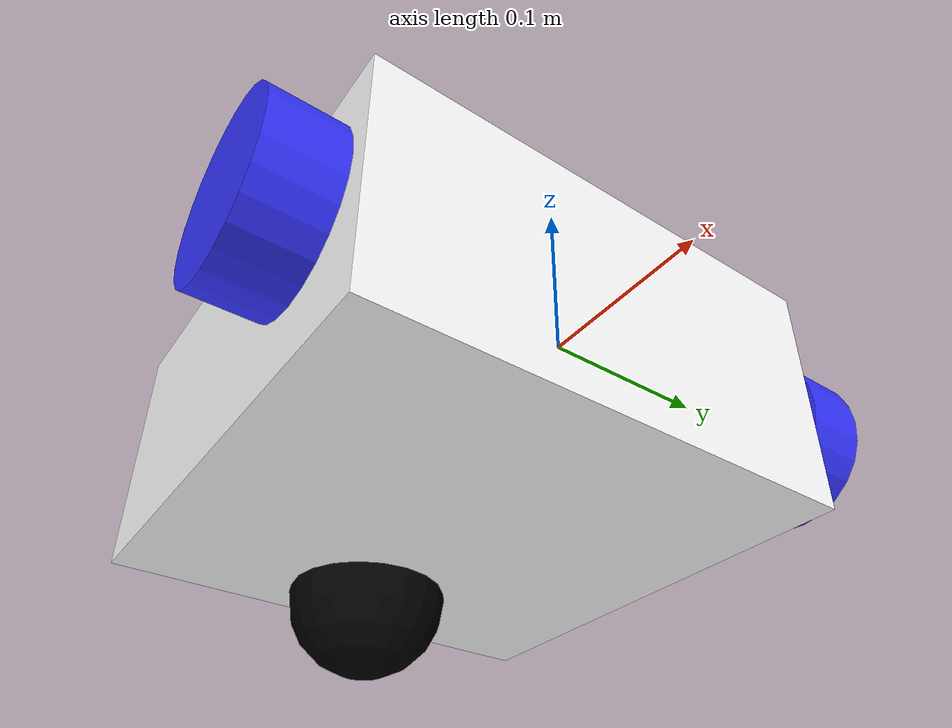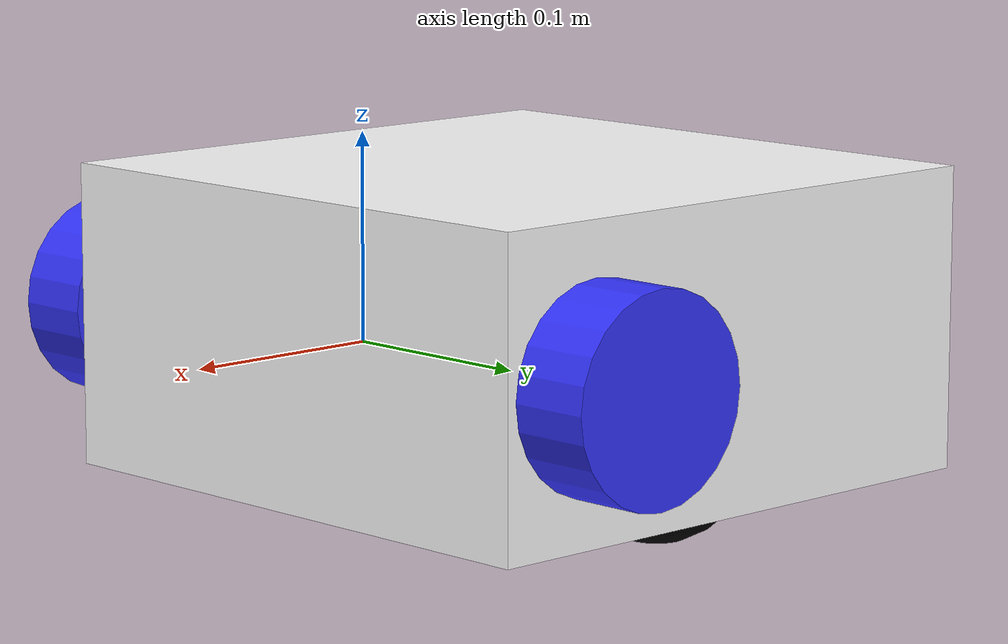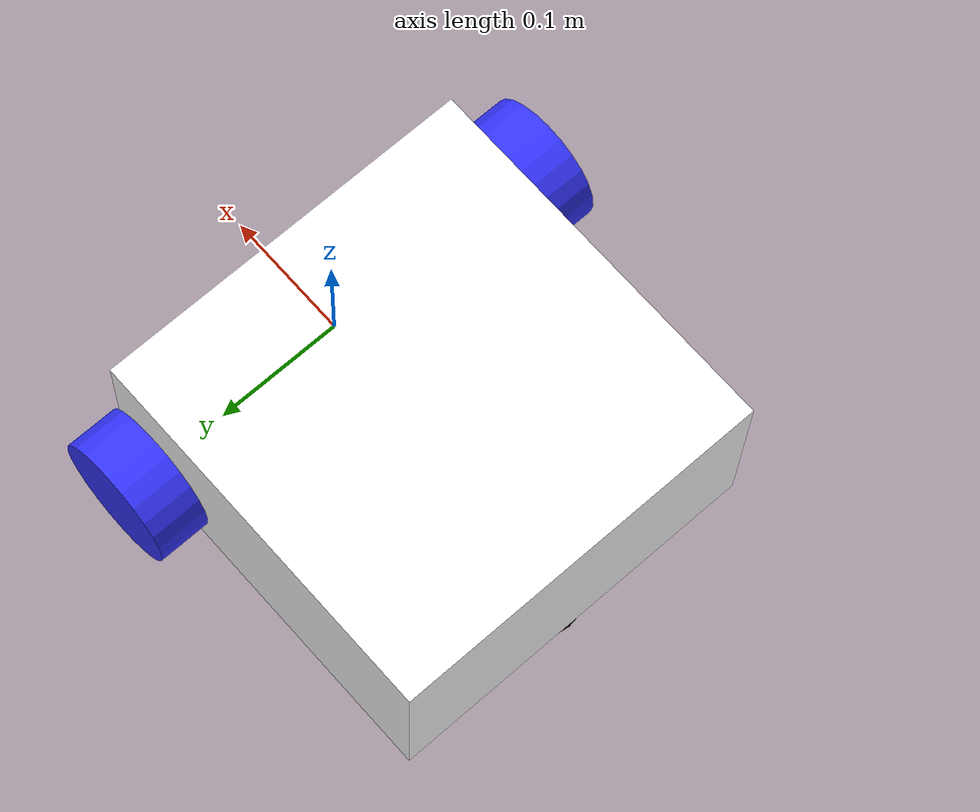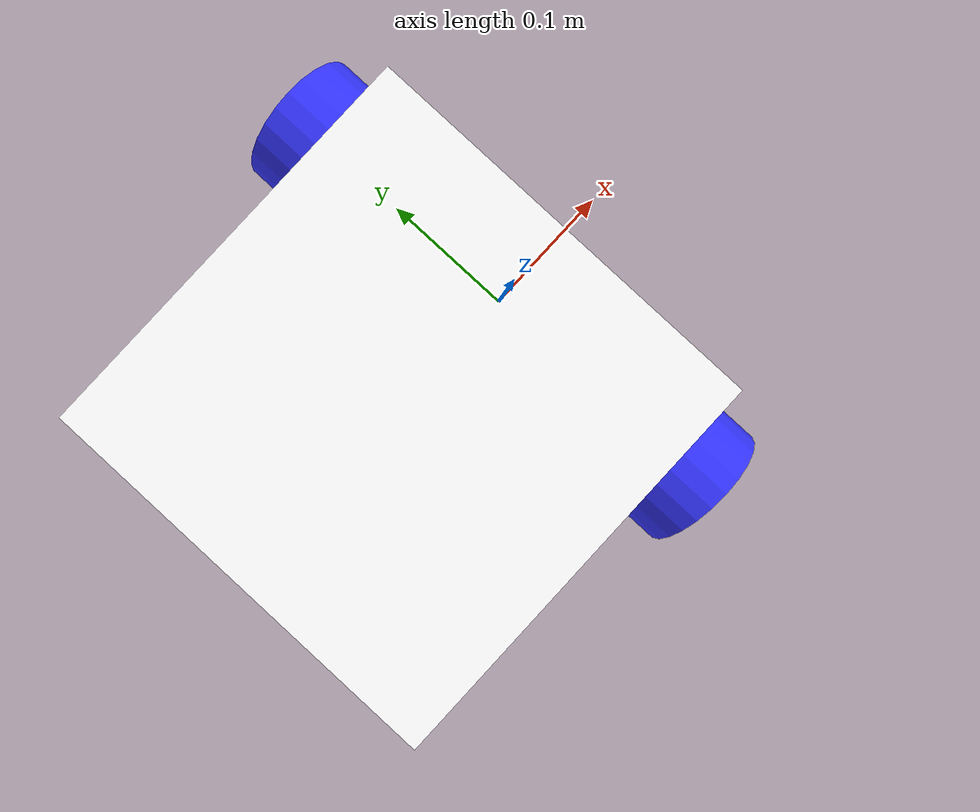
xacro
<?xml version="1.0"?>
<robot xmlns:xacro="http://www.ros.org/wiki/xacro">

    <xacro:include filename = "inertial_macros.xacro"/>

    <material name = "white">
        <color rgba = "1 1 1 1"/>
    </material>

    <material name = "orange">
        <color rgba = "1 0.3 0.1 1"/>
    </material>

    <material name = "blue">
    <color rgba = "0.2 0.2 1 1"/>
    </material>

    <material name = "black">
        <color rgba = "0 0 0 1"/>
    </material>

    <!-- BASE LINK -->
    <link name = "base_link">

    </link>

    <!-- CHASSIS LINK -->
    <joint name = "chassis_joint" type = "fixed">
        <parent link = "base_link"/>
        <child link = "chassis"/>
        <origin xyz = "-0.1 0 0"/>
    </joint>

    <link name = "chassis">
        <visual>
            <origin xyx = "0.15 0 0.075"/>
            <geometry>
                <box size = "0.3 0.3 0.15"/>
            </geometry>
            <material name = "white"/>
        </visual>
        <colision>
            <origin xyx = "0.15 0 0.075"/>
            <geometry>
                <box size = "0.3 0.3 0.15"/>
            </geometry>
        </colision>
        <xacro:inertial_box mass = "0.5" x = "0.3" y = "0.3" z = "0.15">
            <origin xyz = "0.15 0 0.075" rpy = "0 0 0"/>
        </xacro:inertial_box>
    </link>

    <!-- LEFT WHEEL LINK -->
    <joint name = "left_wheel_joint" type = "continuous">
        <parent link = "base_link"/>
        <child link = "left_wheel"/>
        <origin xyz = "0 0.175 0" rpy = "-${pi/2} 0 0"/>
        <axis xyz = "0 0 1"/>
    </joint>

    <link name = "left_wheel">
        <visual>
            <geometry>
                <cylinder radius = "0.05" length = "0.04"/>
            </geometry>
            <material name = "blue"/>
        </visual>
        <colision>
            <geometry>
                <cylinder radius = "0.05" length = "0.04"/>
            </geometry>
        </colision>
        <xacro:inertial_cylinder mass = "0.1" length = "0.04" radius = "0.05">
            <origin xyz = "0 0 0" rpy = "0 0 0"/>
        </xacro:inertial_cylinder>
    </link>

    <!--RIGHT WHEEL LINK -->
    <joint name = "right_wheel_joint" type = "continuous">
        <parent link = "base_link"/>
        <child link = "right_wheel"/>
        <origin xyz = "0 -0.175 0" rpy = "${pi/2} 0 0"/>
        <axis xyz = "0 0 -1"/>
    </joint>

    <link name = "right_wheel">
        <visual>
            <geometry>
                <cylinder radius = "0.05" length = "0.04"/>
            </geometry>
            <material name = "blue"/>
        </visual>
        <colision>
            <geometry>
                <cylinder radius = "0.05" length = "0.04"/>
            </geometry>
        </colision>
        <xacro:inertial_cylinder mass = "0.1" length = "0.04" radius = "0.05">
            <origin xyz = "0 0 0" rpy = "0 0 0"/>
        </xacro:inertial_cylinder>
    </link>

    <!-- CASTER WHEEL LINK -->
    <joint name = "caster_wheel" type = "fixed">
        <parent link = "chassis"/>
        <child link = "caster_wheel"/>
        <origin xyz = "-0.1 0 -0.08"/>
    </joint>

    <link name = "caster_wheel">
        <visual>
            <geometry>
                <sphere radius = "0.05"/>
            </geometry>
            <material name = "black"/>
        </visual>
        <colision>
            <geometry>
                <sphere radius = "0.05"/>
            </geometry>
        </colision>
        <xacro:inertial_sphere mass = "0.1" radius = "0.05">
            <origin xyz = "0 0 0" rpy = "0 0 0"/>
        </xacro:inertial_sphere>
    </link>
</robot>
